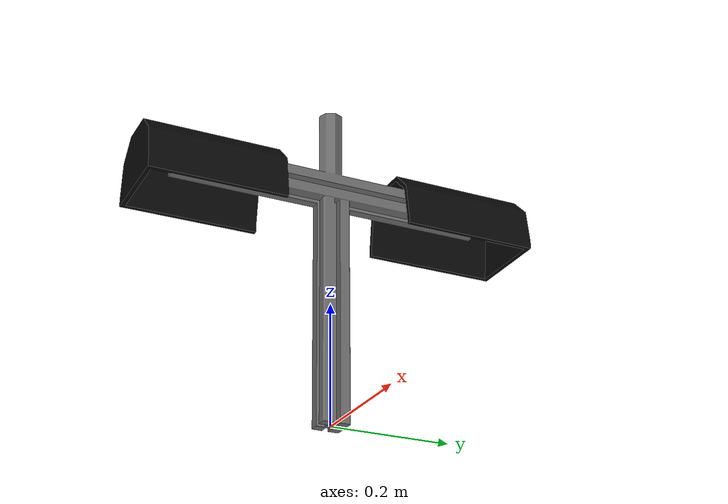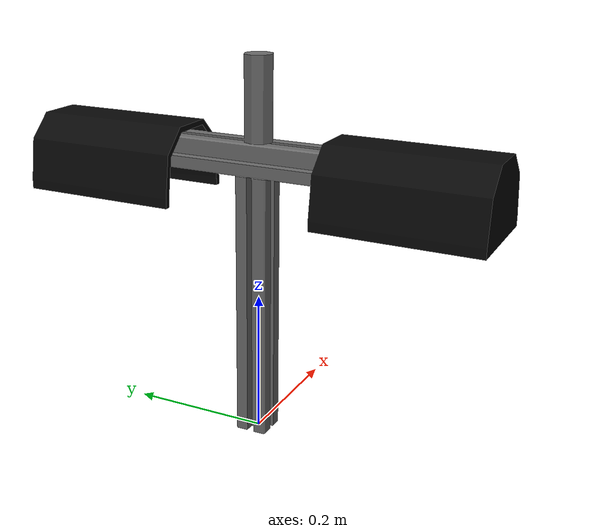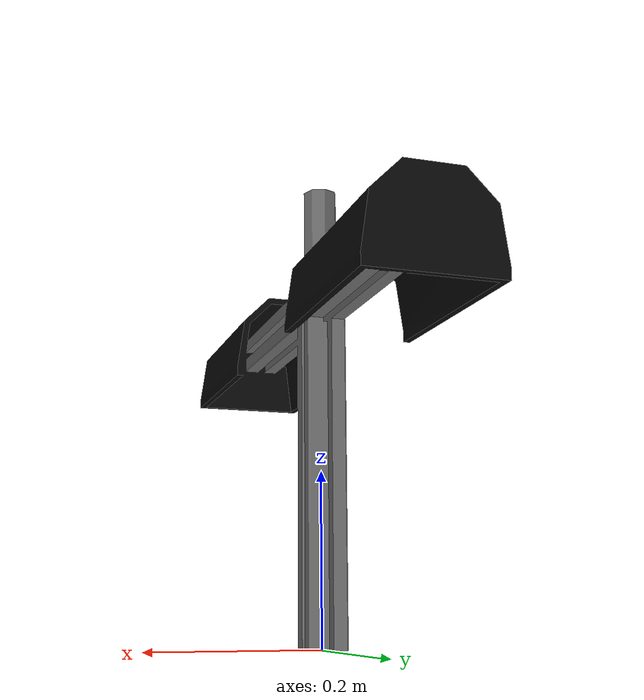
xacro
<?xml version="1.0"?>
<robot name="justina_torso"
    xmlns:xacro="http://www.ros.org/wiki/xacro">

    <xacro:macro name="box_inertia" params="m x y z">
        <inertia ixx="${m*(y*y+z*z)/12}" ixy = "0" ixz = "0" iyy="${m*(x*x+z*z)/12}" iyz = "0" izz="${m*(x*x+z*z)/12}"/>
    </xacro:macro>

    <xacro:property name="torso_mass" value="0.6"/>
    <xacro:property name="spine_mass" value="0.1"/>

    <link name="torso_link">
        <inertial>
            <mass value="${torso_mass}"/>
            <origin xyz= "0 0 -0.1" rpy="0 0 0"/>
            <xacro:box_inertia m="${torso_mass}" x="0.07" y="0.09" z="0.05"/>
        </inertial>

        <visual>
            <origin xyz= "0.0 0.0 0.0" rpy="0 0 0"/>
            <geometry>
                <mesh filename="package://justina_description/meshes/justina/torso/Justina_Torso_LowPoly.dae" scale="1 1 1"/>
            </geometry>
        </visual>
        <collision>
            <origin xyz= "0.0 0.0 0.0" rpy="0 0 0"/>
            <geometry>
                <mesh filename="package://justina_description/meshes/justina/torso/Justina_Torso_LowPoly.dae" scale="1 1 1"/>
            </geometry>
        </collision>
    </link>

    <joint name="spine_connect" type="fixed">
        <origin xyz= "0.0 0 0.35" rpy="0 0 0"/>
        <parent link="torso_link"/>5
        <child link="spine_link"/>
    </joint>

    <link name="spine_link">
        <inertial>
            <mass value="${spine_mass}"/>
            <origin xyz= "0.0 0.0 -0.5325" rpy="0 0 0"/>
            <xacro:box_inertia m="${spine_mass}" x="0.05" y="0.05" z="0.5"/>
        </inertial>
    </link>

</robot>
